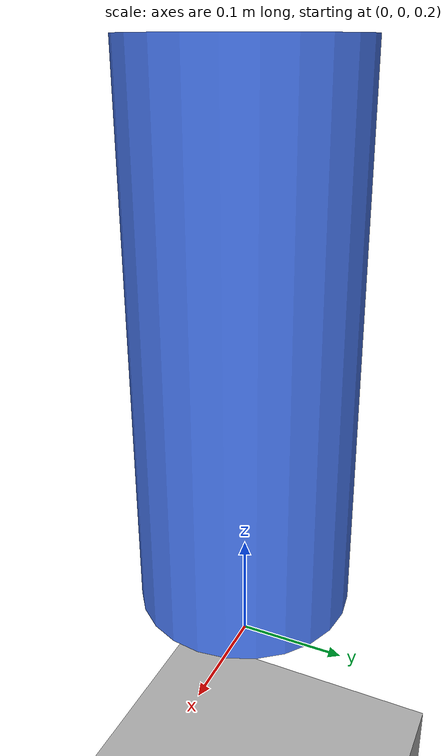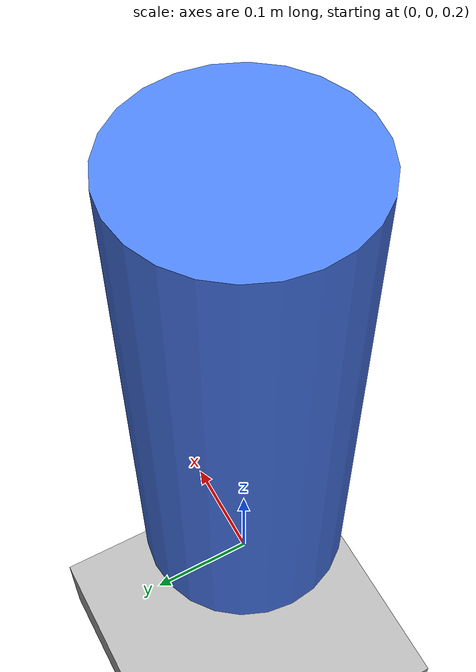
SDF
<?xml version="1.0" ?>
<sdf version="1.7">
  <world name="sortabot_world">

    <!-- ROS 2 integration plugin -->
    <plugin
      filename="libgz-sim-ros2-system.so"
      name="gz::sim::systems::Ros2System">
      <ros>
        <!-- Use global namespace -->
        <namespace>/</namespace>
        <use_sim_time>true</use_sim_time>
      </ros>
    </plugin>

    <!-- Basic light -->
    <light type="directional" name="sun">
      <pose>0 0 10 0 0 0</pose>
      <diffuse>1.0 1.0 0.9 1</diffuse>
      <specular>0.5 0.5 0.5 1</specular>
      <direction>0.1 0.1 -1</direction>
    </light>

    <!-- Simple ground plane -->
    <model name="ground">
      <static>true</static>
      <link name="link">
        <pose>0 0 -0.05 0 0 0</pose>
        <collision name="collision">
          <geometry>
            <box>
              <size>20 20 0.1</size>
            </box>
          </geometry>
        </collision>
        <visual name="visual">
          <geometry>
            <box>
              <size>20 20 0.1</size>
            </box>
          </geometry>
          <material>
            <ambient>0.4 0.4 0.4 1</ambient>
            <diffuse>0.7 0.7 0.7 1</diffuse>
          </material>
        </visual>
      </link>
    </model>

    <!-- Your robot -->
    <include>
      <uri>file:///home/ellynrose/Robotics_Assignment/src/sortabot/models/sortabot.sdf</uri>
      <name>sortabot</name>
      <pose>0 0 0.25 0 0 0</pose>
    </include>

  </world>
</sdf>

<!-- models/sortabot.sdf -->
<sdf version="1.7">
  <model name="sortabot">
    <link name="base_link">
      <pose>0 0 0.25 0 0 0</pose>

	   <visual name="visual">
	  <geometry>
	    <cylinder>
	      <radius>0.1</radius>
	      <length>0.5</length>
	    </cylinder>
	  </geometry>
	  <material>
	    <ambient>0.2 0.4 1.0 1.0</ambient>
	    <diffuse>0.3 0.5 1.0 1.0</diffuse>
	  </material>
	</visual>

	<collision name="collision">
	  <geometry>
	    <cylinder>
	      <radius>0.1</radius>
	      <length>0.5</length>
	    </cylinder>
	  </geometry>
	</collision>

      <inertial>
        <mass>5.0</mass>
        <inertia>
          <ixx>0.1</ixx>
          <ixy>0</ixy>
          <ixz>0</ixz>
          <iyy>0.1</iyy>
          <iyz>0</iyz>
          <izz>0.1</izz>
        </inertia>
      </inertial>

    </link>
  </model>
</sdf>
